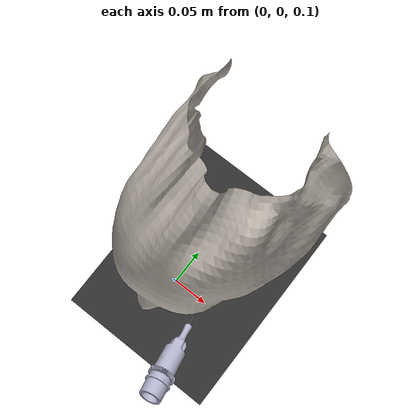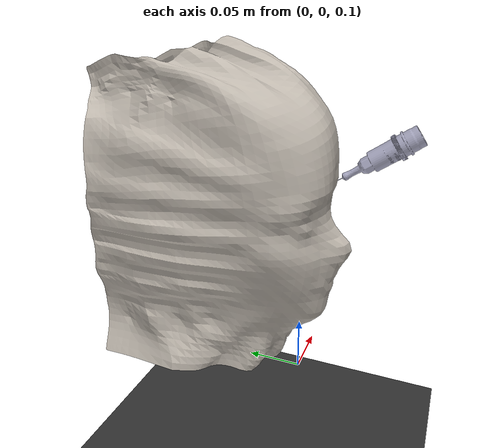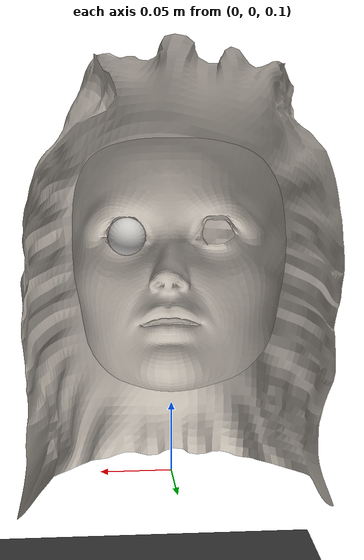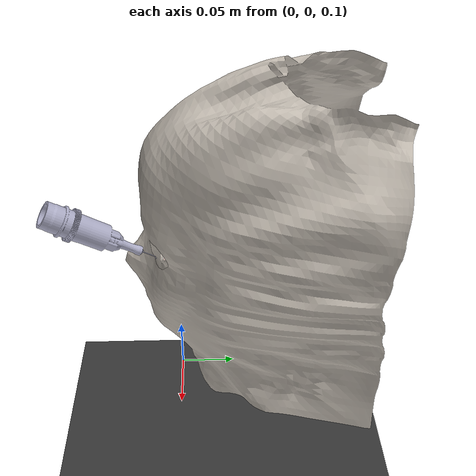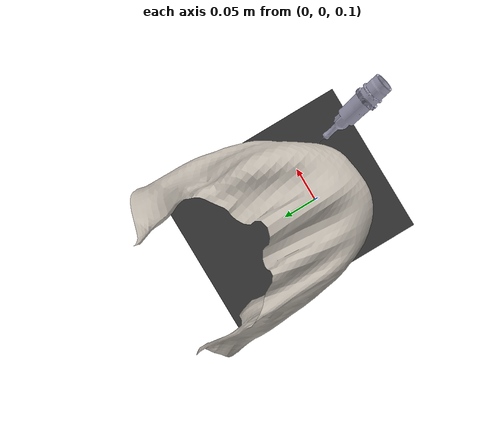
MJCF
<mujoco model="Eye Visualization">
  <compiler angle="degree" meshdir="../meshes" texturedir="../textures"/>

  <!-- Include shared assets -->
  <include file="eye_assets_temp.xml"/>

  <!-- Include physics parameters -->
  <include file="eye_physics.xml"/>

  <!-- Include coordinate axes -->

  <visual>
    <global offwidth="1920" offheight="1080"/>
    <quality shadowsize="4096"/>
  </visual>

  <worldbody>
    <!-- Lighting setup -->
    <light name="top_light" pos="0 0 3" dir="0 0 -1"
           diffuse="1 1 1" specular="0.5 0.5 0.5" ambient="0.1 0.1 0.1"
           attenuation="1 0.1 0.01" castshadow="true" directional="false"/>
    <light name="side_light" pos="0.5 0.5 1" dir="-1 0 -0.5"
           diffuse="0.6 0.6 0.6" specular="0.3 0.3 0.3" ambient="0.05 0.05 0.05"
           attenuation="1 0.2 0.02" castshadow="true" directional="false"/>

    <!-- Ground plane -->
    <geom type="plane" size="1 1 0.1" rgba="0.2 0.2 0.2 1"/>
  </worldbody>

  <!-- Include shared eye body -->
  <include file="eye_body.xml"/>
</mujoco>

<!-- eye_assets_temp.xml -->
<mujoco>
  <!-- Shared assets for eye scene -->
  <asset>
    <!-- Load eye component meshes -->
    <mesh name="cornea" file="Cornea_L.obj"/>
    <mesh name="eye_interior" file="EyeInterior_L.obj"/>
    <mesh name="eye" file="Eye_L.obj"/>
    <mesh name="eye_wet" file="EyeWet_L.obj"/>
    <mesh name="lens" file="Lens_L_extracted.obj"/>
    <mesh name="inner_eyelid" file="Inner_Eyelid_L.obj"/>
    <mesh name="tear_duct" file="TearDuct_L.obj"/>
    <mesh name="cloth" file="Cloth_L.obj"/>
    <mesh name="face" file="Face_L.obj"/>

    <!-- Load surgical tool -->
    <mesh name="diathermic_tip" file="tools/diathermic_tip.obj" scale="0.001 0.001 0.001"/>

    <!-- Textures -->
    <texture name="lens_texture" type="2d" file="lens_uv_map_temp.png"/>
    <texture name="eye_texture" type="2d" file="INNER_EYE_1_Base_color.png"/>
    <texture name="face_texture" type="2d" file="Eye-Face_Medium02.png"/>
    <texture name="cloth_texture" type="2d" file="Cloth_Color.png"/>

    <!-- Materials -->
    <material name="lens_mat" texture="lens_texture" specular="0.5" shininess="0.8"/>
    <material name="eye_mat" texture="eye_texture" specular="0.3" shininess="0.5"/>
    <material name="cornea_mat" rgba="0.9 0.95 1.0 0.3" specular="1.0" shininess="1.0"/>
    <material name="eyelid_mat" rgba="0.95 0.8 0.75 1.0"/>
    <material name="wet_mat" rgba="1.0 1.0 1.0 0.1" specular="1.0" shininess="1.0"/>
    <material name="cloth_mat" texture="cloth_texture" specular="0.2" shininess="0.35" reflectance="0.0"/>
    <material name="face_mat" texture="face_texture" specular="0.3" shininess="0.3"/>
    <material name="tool_mat" rgba="0.7 0.7 0.8 1.0" specular="0.8" shininess="0.9"/>
  </asset>
</mujoco>

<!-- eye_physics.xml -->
<mujoco>
  <!-- Physics simulation parameters -->
  <option timestep="0.5" gravity="0 0 -9.81">
    <flag contact="enable"/>
  </option>
</mujoco>

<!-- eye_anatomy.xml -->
<mujoco>
  <!-- Eye anatomical components -->
  <worldbody>
    <body name="eye_assembly" pos="0 0 0.1">
      <!-- Lens with UV map -->
      <geom name="lens_geom" type="mesh" mesh="lens"
            material="lens_mat" contype="0" conaffinity="0" group="0"/>

      <!-- Eye interior (base) -->
      <geom name="eye_interior_geom" type="mesh" mesh="eye_interior"
            material="eye_mat" contype="0" conaffinity="0" group="1"/>

      <!-- Main eye -->
      <geom name="eye_geom" type="mesh" mesh="eye"
            material="eye_mat" contype="0" conaffinity="0" group="1"/>

      <!-- Cornea (transparent) -->
      <geom name="cornea_geom" type="mesh" mesh="cornea"
            material="cornea_mat" contype="0" conaffinity="0" group="1"/>

      <!-- Wet layer (glossy effect) -->
      <geom name="eye_wet_geom" type="mesh" mesh="eye_wet"
            material="wet_mat" contype="0" conaffinity="0" group="1"/>

      <!-- Inner eyelid -->
      <geom name="inner_eyelid_geom" type="mesh" mesh="inner_eyelid"
            material="eyelid_mat" contype="0" conaffinity="0" group="1"/>

      <!-- Tear duct -->
      <geom name="tear_duct_geom" type="mesh" mesh="tear_duct"
            material="eyelid_mat" contype="0" conaffinity="0" group="1"/>

      <!-- Cloth/skin -->
      <geom name="cloth_geom" type="mesh" mesh="cloth"
            material="cloth_mat" contype="0" conaffinity="0" group="1"/>

      <!-- Face -->
      <geom name="face_geom" type="mesh" mesh="face"
            material="face_mat" contype="0" conaffinity="0" group="1"/>
    </body>
  </worldbody>
</mujoco>

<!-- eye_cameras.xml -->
<mujoco>
  <!-- Camera positions for eye visualization -->
  <worldbody>
    <!-- Camera rig positioned relative to eye -->
    <body name="camera_rig" pos="0 0 0.1">
      <!-- Top view: looking down at the eye from above -->
      <camera name="top_view" pos="0.0325 -0.1 0.170" euler="90 0 0" fovy="15"/>

      <!-- Angle view: perspective view from the side -->
      <camera name="angle_view" pos="0.2 -0.1 0.175" euler="90 70 0" fovy="40"/>
    </body>
  </worldbody>
</mujoco>

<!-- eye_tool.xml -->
<mujoco>
  <!-- Surgical tool (diathermic tip) -->
  <worldbody>
    <body name="diathermic_tip" pos="0.0494 -0.0089 0.2735" euler="-25.9 -43.7 101.2" mocap="true">
      <!-- Visual geometry -->
      <geom name="tool_geom" type="mesh" mesh="diathermic_tip"
            material="tool_mat" contype="0" conaffinity="0"/>

      <!-- Tool tip marker (red sphere) -->

      <!-- Tool tip coordinate frame (child body at tip position, rotated 45° around Z relative to tool) -->
      <!-- RCM location -->
      <!-- RCM visual marker (yellow sphere for visibility in video) -->

      <!-- On-tool camera (end effector view) -->
      <camera name="tool_view" pos="0 -0.1 0.0" euler="90 0 0" fovy="15"/>

      <!-- Tool local coordinate axes -->
    </body>
  </worldbody>
</mujoco>

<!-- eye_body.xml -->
<mujoco>
  <!-- Eye body assembly - includes all eye components -->

  <!-- Eye anatomical geometry (lens, cornea, etc.) -->
  <include file="eye_anatomy.xml"/>

  <!-- Cameras for visualization -->
  <include file="eye_cameras.xml"/>

  <!-- Surgical tool -->
  <include file="eye_tool.xml"/>
</mujoco>
